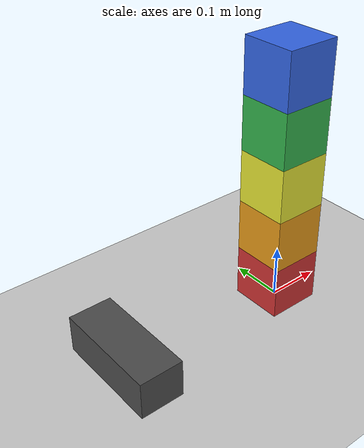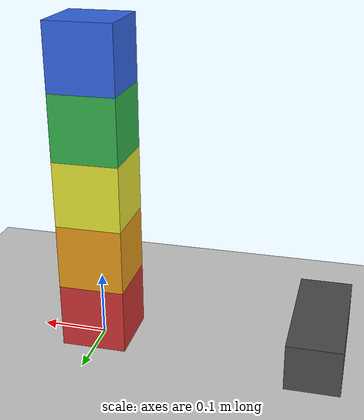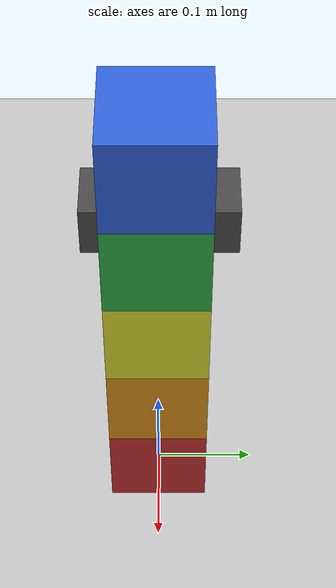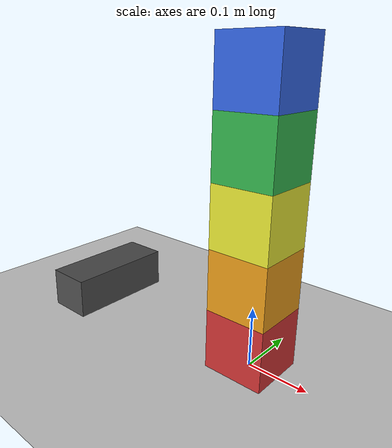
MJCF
<mujoco model="toppling_stack">
  <option timestep="0.002" integrator="implicitfast" gravity="0 0 -9.81"/>

  <worldbody>
    <light name="sun" pos="0 0 3" dir="0 0 -1" directional="true"/>
    <geom name="floor" type="plane" size="3 3 0.1" friction="0.6 0.005 0.0001" rgba="0.8 0.8 0.8 1"/>

    <body name="block1" pos="0 0 0.05">
      <freejoint name="block1_free"/>
      <geom name="block1_geom" type="box" size="0.05 0.05 0.05" density="500" friction="0.6 0.005 0.0001" rgba="0.8 0.2 0.2 1"/>
    </body>
    <body name="block2" pos="0 0 0.15">
      <freejoint name="block2_free"/>
      <geom name="block2_geom" type="box" size="0.05 0.05 0.05" density="500" friction="0.6 0.005 0.0001" rgba="0.9 0.6 0.1 1"/>
    </body>
    <body name="block3" pos="0 0 0.25">
      <freejoint name="block3_free"/>
      <geom name="block3_geom" type="box" size="0.05 0.05 0.05" density="500" friction="0.6 0.005 0.0001" rgba="0.9 0.9 0.2 1"/>
    </body>
    <body name="block4" pos="0 0 0.35">
      <freejoint name="block4_free"/>
      <geom name="block4_geom" type="box" size="0.05 0.05 0.05" density="500" friction="0.6 0.005 0.0001" rgba="0.2 0.7 0.3 1"/>
    </body>
    <body name="block5" pos="0 0 0.45">
      <freejoint name="block5_free"/>
      <geom name="block5_geom" type="box" size="0.05 0.05 0.05" density="500" friction="0.6 0.005 0.0001" rgba="0.2 0.4 0.9 1"/>
    </body>

    <body name="pusher" pos="-0.34 0 0.045">
      <joint name="pusher_slide" type="slide" axis="1 0 0" range="0 0.6" limited="true"/>
      <geom name="pusher_geom" type="box" size="0.04 0.1 0.035" mass="3" friction="0.3 0.005 0.0001" rgba="0.3 0.3 0.3 1"/>
    </body>
  </worldbody>

  <actuator>
    <velocity name="push" joint="pusher_slide" kv="400" ctrlrange="0 2" ctrllimited="true" forcerange="-300 300" forcelimited="true"/>
  </actuator>

  <keyframe>
    <key name="start" qpos="0 0 0.05 1 0 0 0  0 0 0.15 1 0 0 0  0 0 0.25 1 0 0 0  0 0 0.35 1 0 0 0  0 0 0.45 1 0 0 0  0" ctrl="0.8"/>
  </keyframe>
</mujoco>
